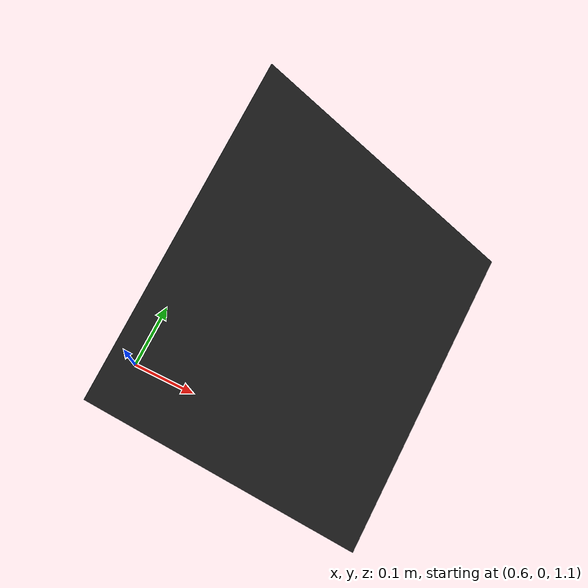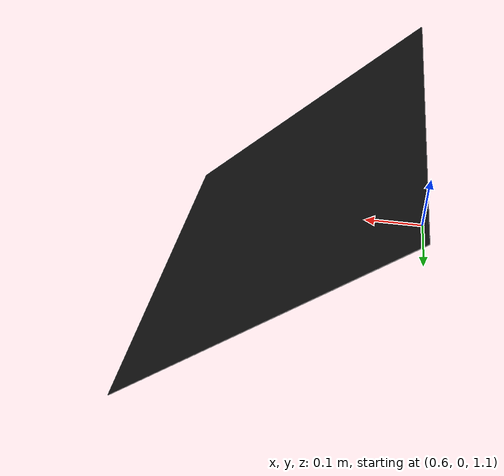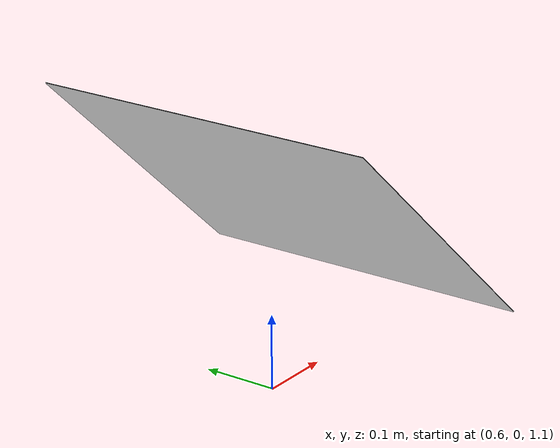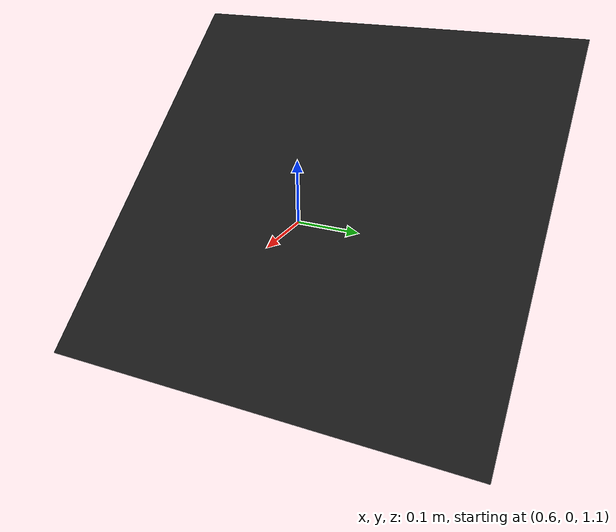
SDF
<sdf version="1.6">
 <world name="default">
  <light name="sun" type="directional">
   <pose>0 0 10 0 -0 0</pose>
   <diffuse>0.8 0.8 0.8 1</diffuse>
   <specular>0.2 0.2 0.2 1</specular>
   <attenuation>
    <range>1000</range>
    <constant>0.9</constant>
    <linear>0.01</linear>
    <quadratic>0.001</quadratic>
   </attenuation>
   <direction>-0.5 0.1 -0.9</direction>
  </light>
  <model name="ground_plane">
   <static>1</static>
   <link name="link">
    <collision name="collision">
     <geometry><plane><normal>0 0 1</normal><size>100 100</size></plane></geometry>
     <surface>
      <contact><collide_bitmask>65535</collide_bitmask></contact>
      <friction><ode><mu>100</mu><mu2>50</mu2></ode></friction>
     </surface>
    </collision>
    <visual name="visual">
     <cast_shadows>0</cast_shadows>
     <geometry><plane><normal>0 0 1</normal><size>100 100</size></plane></geometry>
     <material>
      <script><uri>file://media/materials/scripts/gazebo.material</uri><name>Gazebo/Grey</name></script>
     </material>
    </visual>
   </link>
  </model>
  <gravity>0 0 -9.8</gravity>
  <magnetic_field>6e-06 2.3e-05 -4.2e-05</magnetic_field>
  <atmosphere type="adiabatic"/>
  <physics name="default_physics" default="0" type="ode">
   <max_step_size>0.001</max_step_size>
   <real_time_factor>1</real_time_factor>
   <real_time_update_rate>1000</real_time_update_rate>
  </physics>
  <scene><ambient>0.4 0.4 0.4 1</ambient><background>0.7 0.7 0.7 1</background><shadows>1</shadows></scene>
  <audio><device>default</device></audio>
  <spherical_coordinates>
   <surface_model>EARTH_WGS84</surface_model>
   <latitude_deg>0</latitude_deg>
   <longitude_deg>0</longitude_deg>
   <elevation>0</elevation>
   <heading_deg>0</heading_deg>
  </spherical_coordinates>
  <model name="VS_landmark">
   <static>1</static>
   <link name="link">
    <collision name="collision"><geometry><box><size>1e-05 0.5 0.5</size></box></geometry></collision>
    <visual name="visual">
     <geometry><box><size>1e-05 0.5 0.5</size></box></geometry>
     <material>
      <script>
       <uri>model://VS_landmark/materials/scripts</uri>
       <uri>model://VS_landmark/materials/textures</uri>
       <name>flash/qr</name>
      </script>
     </material>
    </visual>
   </link>
   <link name="linkblack">
    <pose>0.001 0 0 0 -0 0</pose>
    <collision name="collisionblack"><geometry><box><size>1e-05 0.5 0.5</size></box></geometry></collision>
    <visual name="visualblack">
     <geometry><box><size>1e-05 0.5 0.5</size></box></geometry>
     <material>
      <script><uri>file://media/materials/scripts/gazebo.material</uri><name>Gazebo/Black</name></script>
     </material>
    </visual>
   </link>
   <pose>0.83056 0.14666 1.25 0 -0.845708 0</pose>
  </model>
 </world>
</sdf>
